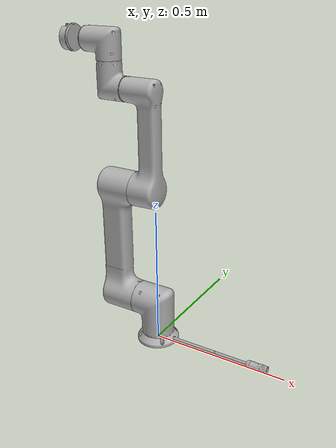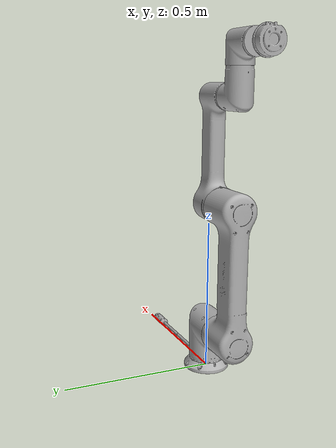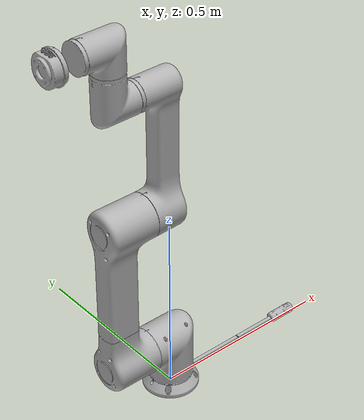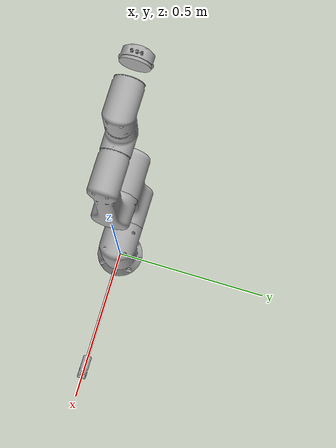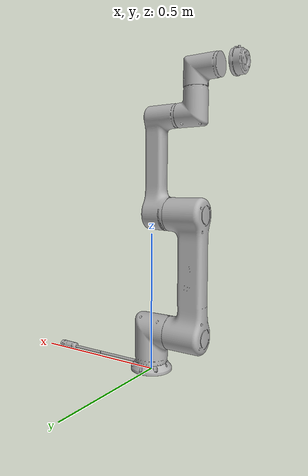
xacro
<?xml version="1.0"?>
<robot xmlns:xacro="http://www.ros.org/wiki/xacro" name="hcr_robot">
  <xacro:include filename="$(find hcr_robot_description)/urdf/hcr_robot.xacro" />
</robot>

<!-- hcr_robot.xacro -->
<robot name="hcr_robot" xmlns:xacro="http://www.ros.org/wiki/xacro">

<xacro:arg name="hardware_plugin" default="mock_components/GenericSystem"/>
<xacro:arg name="rw_rate"         default="100"/>
<xacro:arg name="is_async"        default="false"/>

<xacro:include filename="$(find hcr_robot_description)/urdf/materials.xacro" />
<xacro:include filename="$(find hcr_robot_description)/urdf/hcr_robot.trans" />
<xacro:include filename="$(find hcr_robot_description)/urdf/hcr_robot.gazebo" />
<xacro:include filename="$(find hcr_robot_description)/urdf/hcr_robot.ros2_control.xacro" />
<xacro:hcr_robot_ros2_control plugin="$(arg hardware_plugin)"
                              rw_rate="$(arg rw_rate)"
                              is_async="$(arg is_async)"/>
<link name="base_link">
  <inertial>
    <origin xyz="0.044693591972953806 -9.689819846991377e-05 0.013982771179495564" rpy="0 0 0"/>
    <mass value="4.071462983655495"/>
    <inertia ixx="0.004614" iyy="0.063084" izz="0.067151" ixy="-2e-05" iyz="0.0" ixz="-0.000189"/>
  </inertial>
  <visual>
    <origin xyz="0 0 0" rpy="0 0 0"/>
    <geometry>
      <mesh filename="package://hcr_robot_description/meshes/base_link.stl" scale="0.001 0.001 0.001"/>
    </geometry>
    <material name="silver"/>
  </visual>
  <collision>
    <origin xyz="0 0 0" rpy="0 0 0"/>
    <geometry>
      <mesh filename="package://hcr_robot_description/meshes/base_link.stl" scale="0.001 0.001 0.001"/>
    </geometry>
  </collision>
</link>

<link name="link1_1">
  <inertial>
    <origin xyz="-0.009232924655966162 5.611908895686318e-08 0.08981078121700108" rpy="0 0 0"/>
    <mass value="17.125748524580114"/>
    <inertia ixx="0.054601" iyy="0.061186" izz="0.036738" ixy="0.0" iyz="-0.0" ixz="0.004569"/>
  </inertial>
  <visual>
    <origin xyz="-0.0 0.0 -0.03" rpy="0 0 0"/>
    <geometry>
      <mesh filename="package://hcr_robot_description/meshes/link1_1.stl" scale="0.001 0.001 0.001"/>
    </geometry>
    <material name="silver"/>
  </visual>
  <collision>
    <origin xyz="-0.0 0.0 -0.03" rpy="0 0 0"/>
    <geometry>
      <mesh filename="package://hcr_robot_description/meshes/link1_1.stl" scale="0.001 0.001 0.001"/>
    </geometry>
  </collision>
</link>

<link name="link2_1">
  <inertial>
    <origin xyz="-0.08134423156498356 0.0004999972193747809 0.21200027982915884" rpy="0 0 0"/>
    <mass value="32.073698785630135"/>
    <inertia ixx="1.334728" iyy="1.368804" izz="0.0845" ixy="-5e-06" iyz="-0.003172" ixz="-0.002068"/>
  </inertial>
  <visual>
    <origin xyz="0.0785 0.0 -0.148778" rpy="0 0 0"/>
    <geometry>
      <mesh filename="package://hcr_robot_description/meshes/link2_1.stl" scale="0.001 0.001 0.001"/>
    </geometry>
    <material name="silver"/>
  </visual>
  <collision>
    <origin xyz="0.0785 0.0 -0.148778" rpy="0 0 0"/>
    <geometry>
      <mesh filename="package://hcr_robot_description/meshes/link2_1.stl" scale="0.001 0.001 0.001"/>
    </geometry>
  </collision>
</link>

<link name="link3_1">
  <inertial>
    <origin xyz="0.03733088153046067 -8.45436915776097e-06 0.32700293666580915" rpy="0 0 0"/>
    <mass value="6.636542484506931"/>
    <inertia ixx="0.008668" iyy="0.014027" izz="0.010649" ixy="-0.0" iyz="0.0" ixz="0.001661"/>
  </inertial>
  <visual>
    <origin xyz="0.077848 -0.001 -0.572778" rpy="0 0 0"/>
    <geometry>
      <mesh filename="package://hcr_robot_description/meshes/link3_1.stl" scale="0.001 0.001 0.001"/>
    </geometry>
    <material name="silver"/>
  </visual>
  <collision>
    <origin xyz="0.077848 -0.001 -0.572778" rpy="0 0 0"/>
    <geometry>
      <mesh filename="package://hcr_robot_description/meshes/link3_1.stl" scale="0.001 0.001 0.001"/>
    </geometry>
  </collision>
</link>

<link name="link4_1">
  <inertial>
    <origin xyz="-0.053462210233883714 -3.2261679182082545e-07 0.022076827880824546" rpy="0 0 0"/>
    <mass value="6.518501202798632"/>
    <inertia ixx="0.011005" iyy="0.012783" izz="0.007491" ixy="-0.0" iyz="0.0" ixz="0.001222"/>
  </inertial>
  <visual>
    <origin xyz="0.107864 -0.000992 -0.911345" rpy="0 0 0"/>
    <geometry>
      <mesh filename="package://hcr_robot_description/meshes/link4_1.stl" scale="0.001 0.001 0.001"/>
    </geometry>
    <material name="silver"/>
  </visual>
  <collision>
    <origin xyz="0.107864 -0.000992 -0.911345" rpy="0 0 0"/>
    <geometry>
      <mesh filename="package://hcr_robot_description/meshes/link4_1.stl" scale="0.001 0.001 0.001"/>
    </geometry>
  </collision>
</link>

<link name="link5_1">
  <inertial>
    <origin xyz="-0.022082116809040042 -5.860596366637823e-07 0.0534553107989999" rpy="0 0 0"/>
    <mass value="6.518501237017786"/>
    <inertia ixx="0.007541" iyy="0.012794" izz="0.010966" ixy="0.0" iyz="-0.0" ixz="0.001224"/>
  </inertial>
  <visual>
    <origin xyz="0.169864 -0.000992 -1.000941" rpy="0 0 0"/>
    <geometry>
      <mesh filename="package://hcr_robot_description/meshes/link5_1.stl" scale="0.001 0.001 0.001"/>
    </geometry>
    <material name="silver"/>
  </visual>
  <collision>
    <origin xyz="0.169864 -0.000992 -1.000941" rpy="0 0 0"/>
    <geometry>
      <mesh filename="package://hcr_robot_description/meshes/link5_1.stl" scale="0.001 0.001 0.001"/>
    </geometry>
  </collision>
</link>

<link name="link6_1">
  <inertial>
    <origin xyz="-0.019264152679962065 -4.5474100852818493e-07 -0.0005907014657897669" rpy="0 0 0"/>
    <mass value="1.6914762668461325"/>
    <inertia ixx="0.001473" iyy="0.00094" izz="0.000976" ixy="0.0" iyz="0.0" ixz="-8e-06"/>
  </inertial>
  <visual>
    <origin xyz="0.25946 -0.000992 -1.062941" rpy="0 0 0"/>
    <geometry>
      <mesh filename="package://hcr_robot_description/meshes/link6_1.stl" scale="0.001 0.001 0.001"/>
    </geometry>
    <material name="silver"/>
  </visual>
  <collision>
    <origin xyz="0.25946 -0.000992 -1.062941" rpy="0 0 0"/>
    <geometry>
      <mesh filename="package://hcr_robot_description/meshes/link6_1.stl" scale="0.001 0.001 0.001"/>
    </geometry>
  </collision>
</link>

<joint name="joint_1" type="revolute">
  <origin xyz="0.0 0.0 0.03" rpy="0 0 0"/>
  <parent link="base_link"/>
  <child link="link1_1"/>
  <axis xyz="0.0 -0.0 1.0"/>
  <!-- 공식 ±360°, 180°/s (Appendix F·G). 종전 0~360°(음수 불가)는 IK 해가 있어도 계획 실패를 낳았다 -->
  <limit upper="6.283185" lower="-6.283185" effort="100" velocity="3.141593"/>
</joint>

<joint name="joint_2" type="revolute">
  <!-- ★ 실측 교정: x −0.0785→−0.059138 (+19.36mm). joint_3.x 와 짝을 이룬다 (아래 참조) -->
  <origin xyz="-0.059138 0.0 0.119001" rpy="0 0 0"/>
  <parent link="link1_1"/>
  <child link="link2_1"/>
  <axis xyz="-1.0 0.0 0.0"/>
  <limit upper="6.283185" lower="-6.283185" effort="100" velocity="3.141593"/>
</joint>

<joint name="joint_3" type="revolute">
  <origin xyz="-0.019348 0.0 0.425001" rpy="0 0 0"/>
  <parent link="link2_1"/>
  <child link="link3_1"/>
  <axis xyz="1.0 0.0 0.0"/>
  <!-- J3 만 별도 제한 ±165° 가 실제로 존재한다 -->
  <limit upper="2.879793" lower="-2.879793" effort="100" velocity="3.141593"/>
</joint>

<joint name="joint_4" type="revolute">
  <!-- ★ 실측 교정: z 0.338567→0.338499 (−0.07mm) -->
  <origin xyz="-0.030016 -8e-06 0.338499" rpy="0 0 0"/>
  <parent link="link3_1"/>
  <child link="link4_1"/>
  <axis xyz="-1.0 0.0 -0.0"/>
  <limit upper="6.283185" lower="-6.283185" effort="100" velocity="3.141593"/>
</joint>

<joint name="joint_5" type="revolute">
  <!-- ★ 실측 교정: z 0.089596→0.089504 (−0.09mm) -->
  <origin xyz="-0.062 0.0 0.089504" rpy="0 0 0"/>
  <parent link="link4_1"/>
  <child link="link5_1"/>
  <axis xyz="-0.0 -0.0 1.0"/>
  <!-- 실기 wrist2 가 −267° 로 관측된다 — 종전 ±120° 로는 현재 자세조차 표현 못 했다 -->
  <limit upper="6.283185" lower="-6.283185" effort="100" velocity="3.141593"/>
</joint>

<joint name="joint_6" type="revolute">
  <!-- ★ 실측 교정: x −0.089596→−0.132498 (−42.90mm). J5 축에서 flange 까지 거리가
       실기 132.5mm 인데 URDF 는 89.6mm 였다. 이 한 건이 전체 오차의 대부분이었다 -->
  <origin xyz="-0.132498 0.0 0.062" rpy="0 0 0"/>
  <parent link="link5_1"/>
  <child link="link6_1"/>
  <axis xyz="-1.0 -0.0 0.0"/>
  <limit upper="6.283185" lower="-6.283185" effort="100" velocity="3.141593"/>
</joint>

</robot>

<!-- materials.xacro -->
<robot name="hcr_robot" xmlns:xacro="http://www.ros.org/wiki/xacro" >

<material name="silver">
  <color rgba="0.700 0.700 0.700 1.000"/>
</material>

</robot>

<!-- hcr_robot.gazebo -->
<robot name="hcr_robot" xmlns:xacro="http://www.ros.org/wiki/xacro" >

<xacro:property name="body_color" value="Gazebo/Silver" />

<gazebo>
  <plugin name="control" filename="libgazebo_ros_control.so"/>
</gazebo>
<gazebo reference="base_link">
  <material>${body_color}</material>
  <mu1>0.2</mu1>
  <mu2>0.2</mu2>
  <selfCollide>true</selfCollide>
  <gravity>true</gravity>
</gazebo>

<gazebo reference="link1_1">
  <material>${body_color}</material>
  <mu1>0.2</mu1>
  <mu2>0.2</mu2>
  <selfCollide>true</selfCollide>
</gazebo>

<gazebo reference="link2_1">
  <material>${body_color}</material>
  <mu1>0.2</mu1>
  <mu2>0.2</mu2>
  <selfCollide>true</selfCollide>
</gazebo>

<gazebo reference="link3_1">
  <material>${body_color}</material>
  <mu1>0.2</mu1>
  <mu2>0.2</mu2>
  <selfCollide>true</selfCollide>
</gazebo>

<gazebo reference="link4_1">
  <material>${body_color}</material>
  <mu1>0.2</mu1>
  <mu2>0.2</mu2>
  <selfCollide>true</selfCollide>
</gazebo>

<gazebo reference="link5_1">
  <material>${body_color}</material>
  <mu1>0.2</mu1>
  <mu2>0.2</mu2>
  <selfCollide>true</selfCollide>
</gazebo>

<gazebo reference="link6_1">
  <material>${body_color}</material>
  <mu1>0.2</mu1>
  <mu2>0.2</mu2>
  <selfCollide>true</selfCollide>
</gazebo>

</robot>
